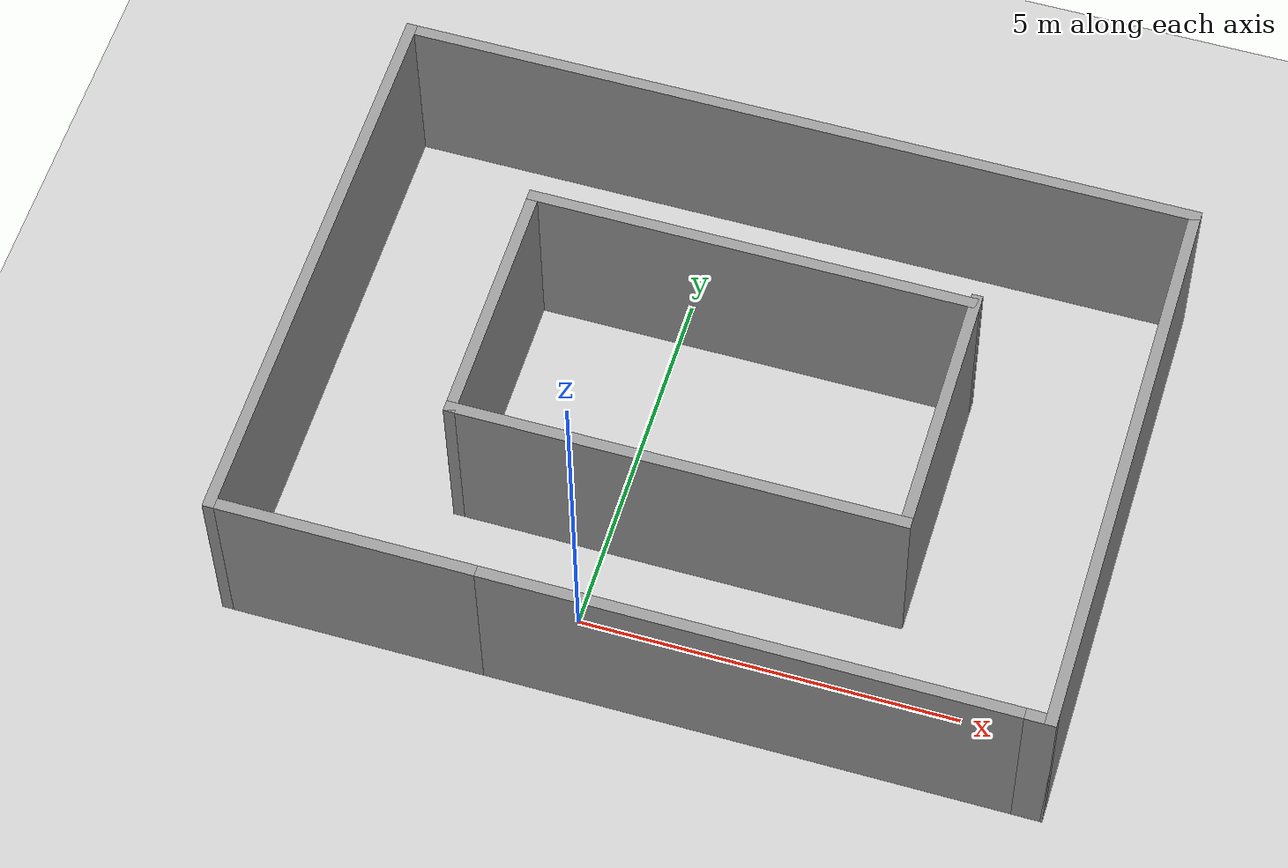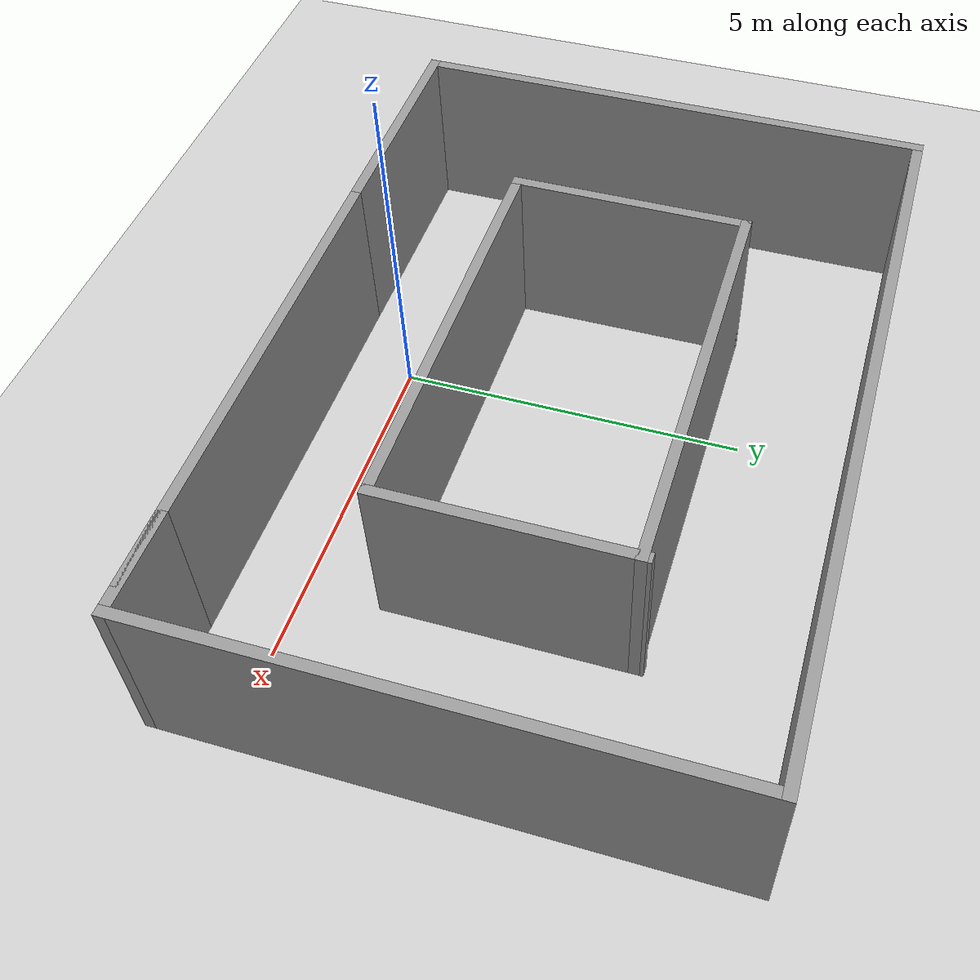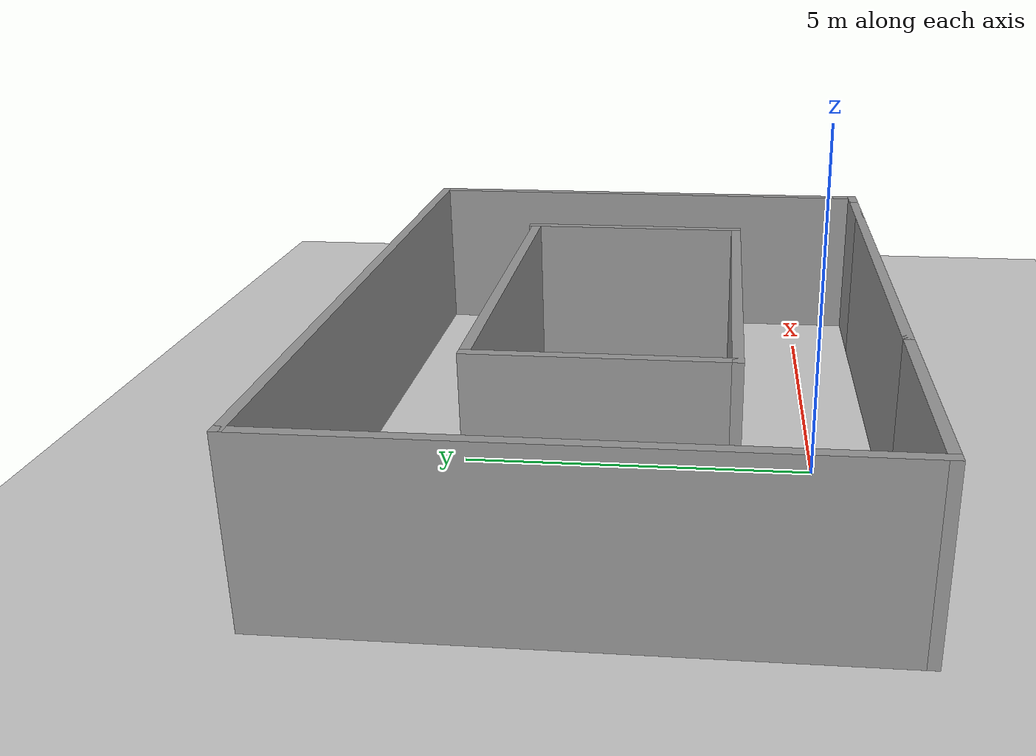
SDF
<sdf version="1.7">
 <world name="default">
  <light name="sun" type="directional">
   <pose>0 0 10 0 -0 0</pose>
   <diffuse>0.8 0.8 0.8 1</diffuse>
   <specular>0.2 0.2 0.2 1</specular>
   <attenuation>
    <range>1000</range>
    <constant>0.9</constant>
    <linear>0.01</linear>
    <quadratic>0.001</quadratic>
   </attenuation>
   <direction>-0.5 0.1 -0.9</direction>
   <spot><inner_angle>0</inner_angle><outer_angle>0</outer_angle><falloff>0</falloff></spot>
  </light>
  <model name="ground_plane">
   <static>1</static>
   <link name="link">
    <collision name="collision">
     <geometry><plane><normal>0 0 1</normal><size>100 100</size></plane></geometry>
     <surface>
      <contact><collide_bitmask>65535</collide_bitmask></contact>
      <friction><ode><mu>100</mu><mu2>50</mu2></ode></friction>
     </surface>
    </collision>
    <visual name="visual">
     <cast_shadows>0</cast_shadows>
     <geometry><plane><normal>0 0 1</normal><size>100 100</size></plane></geometry>
     <material>
      <script><uri>file://media/materials/scripts/gazebo.material</uri><name>Gazebo/Grey</name></script>
     </material>
    </visual>
   </link>
  </model>
  <gravity>0 0 -9.8</gravity>
  <magnetic_field>6e-06 2.3e-05 -4.2e-05</magnetic_field>
  <atmosphere type="adiabatic"/>
  <physics type="ode">
   <max_step_size>0.001</max_step_size>
   <real_time_factor>1</real_time_factor>
   <real_time_update_rate>1000</real_time_update_rate>
  </physics>
  <scene><ambient>0.4 0.4 0.4 1</ambient><background>0.7 0.7 0.7 1</background><shadows>1</shadows></scene>
  <spherical_coordinates>
   <surface_model>EARTH_WGS84</surface_model>
   <latitude_deg>0</latitude_deg>
   <longitude_deg>0</longitude_deg>
   <elevation>0</elevation>
   <heading_deg>0</heading_deg>
  </spherical_coordinates>
  <model name="world_new">
   <pose>0.950083 2.79502 0 0 -0 0</pose>
   <link name="Wall_15">
    <collision name="Wall_15_Collision">
     <geometry><box><size>7 0.15 2.5</size></box></geometry>
     <pose>0 0 1.25 0 -0 0</pose>
    </collision>
    <visual name="Wall_15_Visual">
     <pose>0 0 1.25 0 -0 0</pose>
     <geometry><box><size>7 0.15 2.5</size></box></geometry>
     <material>
      <script><uri>file://media/materials/scripts/gazebo.material</uri><name>Gazebo/Grey</name></script>
      <ambient>1 1 1 1</ambient>
     </material>
     <meta><layer>0</layer></meta>
    </visual>
    <pose>1.475 -3.8 0 0 -0 3.14159</pose>
   </link>
   <link name="Wall_16">
    <collision name="Wall_16_Collision">
     <geometry><box><size>3.5 0.15 2.5</size></box></geometry>
     <pose>0 0 1.25 0 -0 0</pose>
    </collision>
    <visual name="Wall_16_Visual">
     <pose>0 0 1.25 0 -0 0</pose>
     <geometry><box><size>3.5 0.15 2.5</size></box></geometry>
     <material>
      <script><uri>file://media/materials/scripts/gazebo.material</uri><name>Gazebo/Grey</name></script>
      <ambient>1 1 1 1</ambient>
     </material>
     <meta><layer>0</layer></meta>
    </visual>
    <pose>-3.625 -3.8 0 0 -0 3.14159</pose>
   </link>
   <link name="Wall_17">
    <collision name="Wall_17_Collision">
     <geometry><box><size>7.75 0.15 2.5</size></box></geometry>
     <pose>0 0 1.25 0 -0 0</pose>
    </collision>
    <visual name="Wall_17_Visual">
     <pose>0 0 1.25 0 -0 0</pose>
     <geometry><box><size>7.75 0.15 2.5</size></box></geometry>
     <material>
      <script><uri>file://media/materials/scripts/gazebo.material</uri><name>Gazebo/Grey</name></script>
      <ambient>1 1 1 1</ambient>
     </material>
     <meta><layer>0</layer></meta>
    </visual>
    <pose>-5.3 -0 0 0 -0 1.5708</pose>
   </link>
   <link name="Wall_18">
    <collision name="Wall_18_Collision">
     <geometry><box><size>10.75 0.15 2.5</size></box></geometry>
     <pose>0 0 1.25 0 -0 0</pose>
    </collision>
    <visual name="Wall_18_Visual">
     <pose>0 0 1.25 0 -0 0</pose>
     <geometry><box><size>10.75 0.15 2.5</size></box></geometry>
     <material>
      <script><uri>file://media/materials/scripts/gazebo.material</uri><name>Gazebo/Grey</name></script>
      <ambient>1 1 1 1</ambient>
     </material>
     <meta><layer>0</layer></meta>
    </visual>
    <pose>-0 3.8 0 0 -0 0</pose>
   </link>
   <link name="Wall_19">
    <collision name="Wall_19_Collision">
     <geometry><box><size>7.75 0.15 2.5</size></box></geometry>
     <pose>0 0 1.25 0 -0 0</pose>
    </collision>
    <visual name="Wall_19_Visual">
     <pose>0 0 1.25 0 -0 0</pose>
     <geometry><box><size>7.75 0.15 2.5</size></box></geometry>
     <material>
      <script><uri>file://media/materials/scripts/gazebo.material</uri><name>Gazebo/Grey</name></script>
      <ambient>1 1 1 1</ambient>
     </material>
     <meta><layer>0</layer></meta>
    </visual>
    <pose>5.3 -0 0 0 -0 -1.5708</pose>
   </link>
   <link name="Wall_20">
    <collision name="Wall_20_Collision">
     <geometry><box><size>1.5 0.15 2.5</size></box></geometry>
     <pose>0 0 1.25 0 -0 0</pose>
    </collision>
    <visual name="Wall_20_Visual">
     <pose>0 0 1.25 0 -0 0</pose>
     <geometry><box><size>1.5 0.15 2.5</size></box></geometry>
     <material>
      <script><uri>file://media/materials/scripts/gazebo.material</uri><name>Gazebo/Grey</name></script>
      <ambient>1 1 1 1</ambient>
     </material>
     <meta><layer>0</layer></meta>
    </visual>
    <pose>4.625 -3.8 0 0 -0 3.14159</pose>
   </link>
   <link name="Wall_24">
    <collision name="Wall_24_Collision">
     <geometry><box><size>3.55201 0.15 2.5</size></box></geometry>
     <pose>0 0 1.25 0 -0 0</pose>
    </collision>
    <visual name="Wall_24_Visual">
     <pose>0 0 1.25 0 -0 0</pose>
     <geometry><box><size>3.55201 0.15 2.5</size></box></geometry>
     <material>
      <script><uri>file://media/materials/scripts/gazebo.material</uri><name>Gazebo/Grey</name></script>
      <ambient>1 1 1 1</ambient>
     </material>
     <meta><layer>0</layer></meta>
    </visual>
    <pose>2.93509 0.045404 0 0 -0 1.5708</pose>
   </link>
   <link name="Wall_27">
    <collision name="Wall_27_Collision">
     <geometry><box><size>6 0.15 2.5</size></box></geometry>
     <pose>0 0 1.25 0 -0 0</pose>
    </collision>
    <visual name="Wall_27_Visual">
     <pose>0 0 1.25 0 -0 0</pose>
     <geometry><box><size>6 0.15 2.5</size></box></geometry>
     <material>
      <script><uri>file://media/materials/scripts/gazebo.material</uri><name>Gazebo/Grey</name></script>
      <ambient>1 1 1 1</ambient>
     </material>
     <meta><layer>0</layer></meta>
    </visual>
    <pose>0.010086 -1.6556 0 0 -0 3.14159</pose>
   </link>
   <link name="Wall_28">
    <collision name="Wall_28_Collision">
     <geometry><box><size>3.5 0.15 2.5</size></box></geometry>
     <pose>0 0 1.25 0 -0 0</pose>
    </collision>
    <visual name="Wall_28_Visual">
     <pose>0 0 1.25 0 -0 0</pose>
     <geometry><box><size>3.5 0.15 2.5</size></box></geometry>
     <material>
      <script><uri>file://media/materials/scripts/gazebo.material</uri><name>Gazebo/Grey</name></script>
      <ambient>1 1 1 1</ambient>
     </material>
     <meta><layer>0</layer></meta>
    </visual>
    <pose>-2.91491 0.0194 0 0 -0 1.5708</pose>
   </link>
   <link name="Wall_29">
    <collision name="Wall_29_Collision">
     <geometry><box><size>6 0.15 2.5</size></box></geometry>
     <pose>0 0 1.25 0 -0 0</pose>
    </collision>
    <visual name="Wall_29_Visual">
     <pose>0 0 1.25 0 -0 0</pose>
     <geometry><box><size>6 0.15 2.5</size></box></geometry>
     <material>
      <script><uri>file://media/materials/scripts/gazebo.material</uri><name>Gazebo/Grey</name></script>
      <ambient>1 1 1 1</ambient>
     </material>
     <meta><layer>0</layer></meta>
    </visual>
    <pose>0.010086 1.6944 0 0 -0 0</pose>
   </link>
   <static>1</static>
  </model>
 </world>
</sdf>
